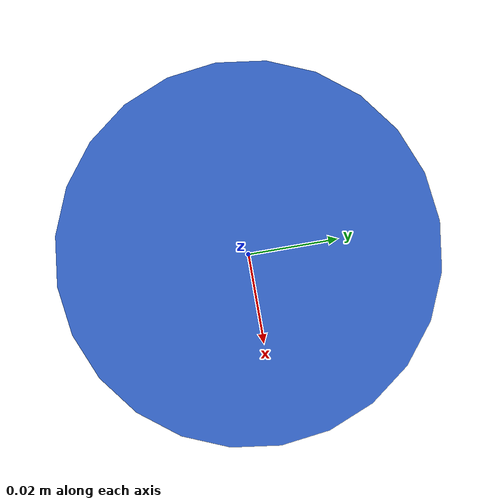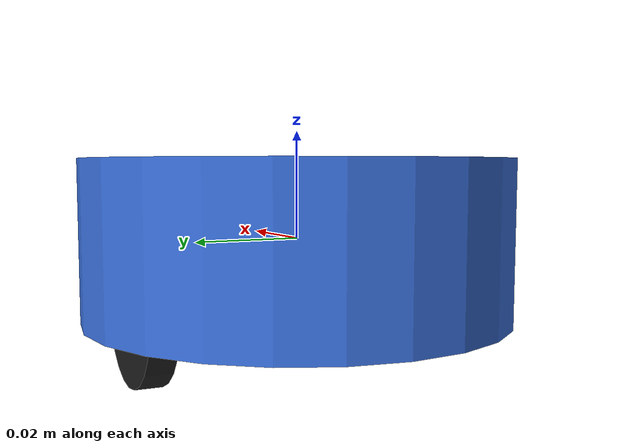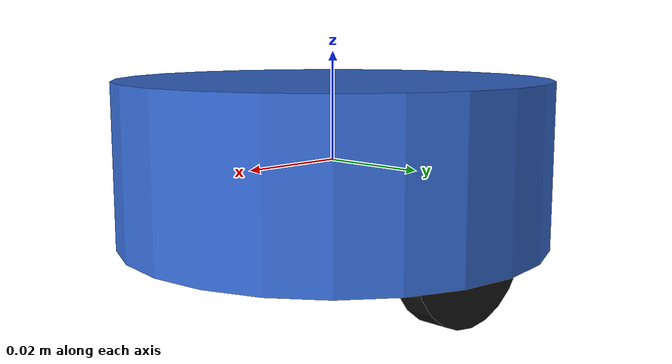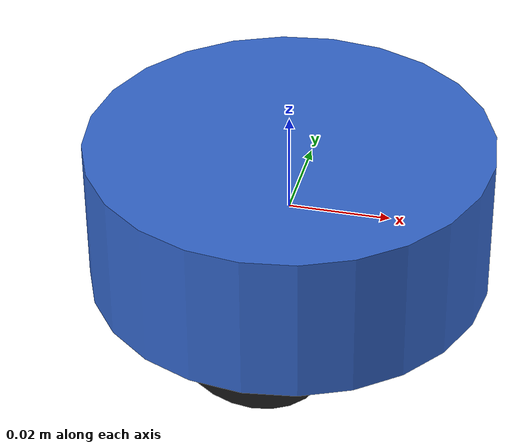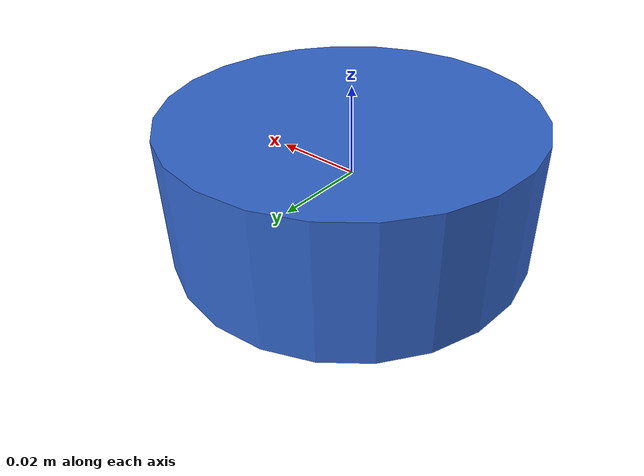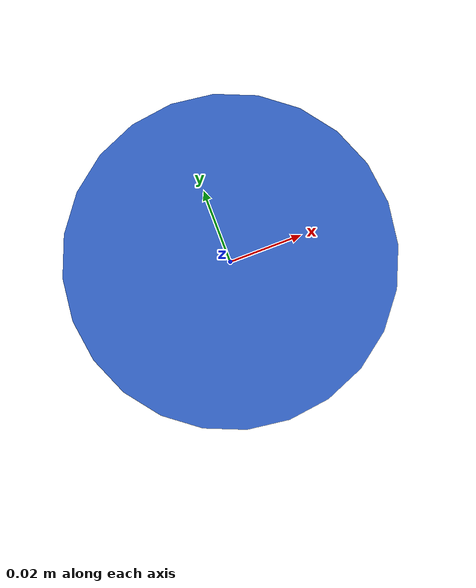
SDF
<?xml version="1.0"?>
<sdf version="1.9">
  <model name="platopod">
    <static>false</static>

    <!-- Body: cylinder, radius 0.04m, height 0.03m, mass 0.15kg -->
    <link name="base_link">
      <inertial>
        <mass>0.15</mass>
        <inertia>
          <ixx>0.0000675</ixx><ixy>0</ixy><ixz>0</ixz>
          <iyy>0.0000675</iyy><iyz>0</iyz>
          <izz>0.00012</izz>
        </inertia>
      </inertial>
      <collision name="body_collision">
        <geometry>
          <cylinder><radius>0.04</radius><length>0.03</length></cylinder>
        </geometry>
      </collision>
      <visual name="body_visual">
        <geometry>
          <cylinder><radius>0.04</radius><length>0.03</length></cylinder>
        </geometry>
        <material>
          <ambient>0.2 0.4 0.8 1</ambient>
          <diffuse>0.2 0.4 0.8 1</diffuse>
        </material>
      </visual>

      <!-- 2D Lidar sensor (optional, 360°, 2m range, 10 Hz) -->
      <sensor name="lidar" type="gpu_lidar">
        <pose>0 0 0.02 0 0 0</pose>
        <topic>scan</topic>
        <update_rate>10</update_rate>
        <lidar>
          <scan>
            <horizontal>
              <samples>360</samples>
              <resolution>1</resolution>
              <min_angle>0</min_angle>
              <max_angle>6.283185</max_angle>
            </horizontal>
          </scan>
          <range>
            <min>0.01</min>
            <max>2.0</max>
          </range>
        </lidar>
        <always_on>true</always_on>
        <visualize>true</visualize>
      </sensor>

      <!-- IMU sensor (50 Hz) -->
      <sensor name="imu" type="imu">
        <update_rate>50</update_rate>
        <always_on>true</always_on>
      </sensor>

      <!-- Contact sensor -->
      <sensor name="contact" type="contact">
        <contact>
          <collision>body_collision</collision>
        </contact>
        <update_rate>10</update_rate>
        <always_on>true</always_on>
      </sensor>
    </link>

    <!-- Left wheel -->
    <link name="left_wheel">
      <pose>0 0.03 -0.01 -1.5708 0 0</pose>
      <inertial>
        <mass>0.01</mass>
        <inertia>
          <ixx>0.000001</ixx><ixy>0</ixy><ixz>0</ixz>
          <iyy>0.000001</iyy><iyz>0</iyz>
          <izz>0.000001</izz>
        </inertia>
      </inertial>
      <collision name="left_wheel_collision">
        <geometry>
          <cylinder><radius>0.015</radius><length>0.005</length></cylinder>
        </geometry>
      </collision>
      <visual name="left_wheel_visual">
        <geometry>
          <cylinder><radius>0.015</radius><length>0.005</length></cylinder>
        </geometry>
        <material>
          <ambient>0.1 0.1 0.1 1</ambient>
          <diffuse>0.1 0.1 0.1 1</diffuse>
        </material>
      </visual>
    </link>

    <!-- Right wheel -->
    <link name="right_wheel">
      <pose>0 -0.03 -0.01 -1.5708 0 0</pose>
      <inertial>
        <mass>0.01</mass>
        <inertia>
          <ixx>0.000001</ixx><ixy>0</ixy><ixz>0</ixz>
          <iyy>0.000001</iyy><iyz>0</iyz>
          <izz>0.000001</izz>
        </inertia>
      </inertial>
      <collision name="right_wheel_collision">
        <geometry>
          <cylinder><radius>0.015</radius><length>0.005</length></cylinder>
        </geometry>
      </collision>
      <visual name="right_wheel_visual">
        <geometry>
          <cylinder><radius>0.015</radius><length>0.005</length></cylinder>
        </geometry>
        <material>
          <ambient>0.1 0.1 0.1 1</ambient>
          <diffuse>0.1 0.1 0.1 1</diffuse>
        </material>
      </visual>
    </link>

    <!-- Caster (frictionless sphere) -->
    <link name="caster">
      <pose>-0.03 0 -0.015 0 0 0</pose>
      <inertial>
        <mass>0.005</mass>
        <inertia>
          <ixx>0.0000001</ixx><ixy>0</ixy><ixz>0</ixz>
          <iyy>0.0000001</iyy><iyz>0</iyz>
          <izz>0.0000001</izz>
        </inertia>
      </inertial>
      <collision name="caster_collision">
        <geometry>
          <sphere><radius>0.005</radius></sphere>
        </geometry>
        <surface>
          <friction>
            <ode><mu>0</mu><mu2>0</mu2></ode>
          </friction>
        </surface>
      </collision>
    </link>

    <!-- Joints -->
    <joint name="left_wheel_joint" type="revolute">
      <parent>base_link</parent>
      <child>left_wheel</child>
      <axis><xyz>0 0 1</xyz></axis>
    </joint>
    <joint name="right_wheel_joint" type="revolute">
      <parent>base_link</parent>
      <child>right_wheel</child>
      <axis><xyz>0 0 1</xyz></axis>
    </joint>
    <joint name="caster_joint" type="ball">
      <parent>base_link</parent>
      <child>caster</child>
    </joint>

    <!-- Differential drive plugin -->
    <plugin filename="gz-sim-diff-drive-system" name="gz::sim::systems::DiffDrive">
      <left_joint>left_wheel_joint</left_joint>
      <right_joint>right_wheel_joint</right_joint>
      <wheel_separation>0.06</wheel_separation>
      <wheel_radius>0.015</wheel_radius>
      <max_linear_acceleration>1.0</max_linear_acceleration>
      <topic>cmd_vel</topic>
      <odom_topic>odom</odom_topic>
    </plugin>

    <!-- Pose publisher -->
    <plugin filename="gz-sim-pose-publisher-system" name="gz::sim::systems::PosePublisher">
      <publish_link_pose>false</publish_link_pose>
      <publish_model_pose>true</publish_model_pose>
      <update_frequency>50</update_frequency>
    </plugin>
  </model>
</sdf>
